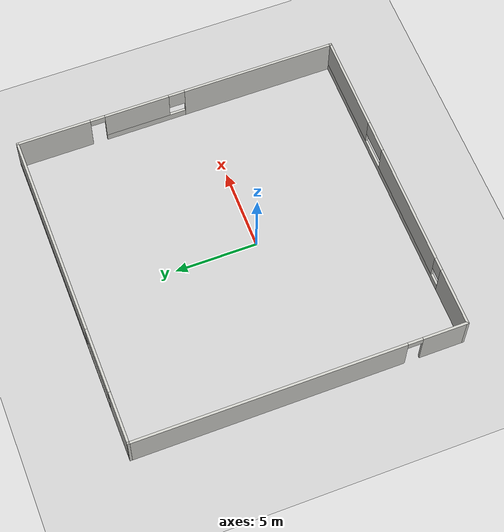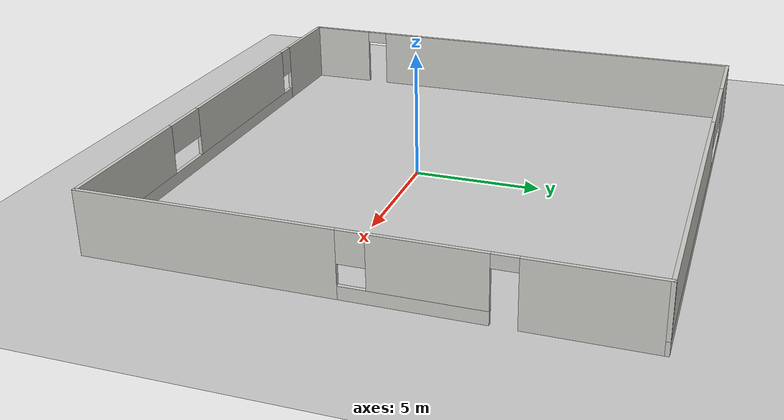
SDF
<sdf version="1.4">
 <world name="default">
  <include><uri>model://ground_plane</uri></include>
  <include><uri>model://sun</uri></include>
  <include><uri>model://simplerooml</uri><name>simplerooml</name></include>
 </world>
</sdf>

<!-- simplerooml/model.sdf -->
<sdf version='1.6'>
  <model name='simplerooml'>
    <pose frame=''>0.015 1.27 0 0 -0 0</pose>
    <link name='Wall_10'>
      <pose frame=''>9.948 0 0 0 -0 1.5708</pose>
      <visual name='Wall_10_Visual_0'>
        <pose frame=''>-5.23827 0 1.25 0 -0 0</pose>
        <geometry>
          <box>
            <size>9.52346 0.15 2.5</size>
          </box>
        </geometry>
        <material>
          <script>
            <uri>file://media/materials/scripts/gazebo.material</uri>
            <name>Gazebo/CeilingTiled</name>
          </script>
          <ambient>0.921569 0.807843 0.615686 1</ambient>
        </material>
        <meta>
          <layer>0</layer>
        </meta>
      </visual>
      <collision name='Wall_10_Collision_0'>
        <geometry>
          <box>
            <size>9.52346 0.15 2.5</size>
          </box>
        </geometry>
        <pose frame=''>-5.23827 0 1.25 0 -0 0</pose>
      </collision>
      <visual name='Wall_10_Visual_1'>
        <pose frame=''>7.7205 0 1.25 0 -0 0</pose>
        <geometry>
          <box>
            <size>4.559 0.15 2.5</size>
          </box>
        </geometry>
        <material>
          <script>
            <uri>file://media/materials/scripts/gazebo.material</uri>
            <name>Gazebo/CeilingTiled</name>
          </script>
          <ambient>0.921569 0.807843 0.615686 1</ambient>
        </material>
        <meta>
          <layer>0</layer>
        </meta>
      </visual>
      <collision name='Wall_10_Collision_1'>
        <geometry>
          <box>
            <size>4.559 0.15 2.5</size>
          </box>
        </geometry>
        <pose frame=''>7.7205 0 1.25 0 -0 0</pose>
      </collision>
      <visual name='Wall_10_Visual_2'>
        <pose frame=''>2.03223 0 0.25 0 -0 0</pose>
        <geometry>
          <box>
            <size>5.01754 0.15 0.5</size>
          </box>
        </geometry>
        <material>
          <script>
            <uri>file://media/materials/scripts/gazebo.material</uri>
            <name>Gazebo/CeilingTiled</name>
          </script>
          <ambient>0.921569 0.807843 0.615686 1</ambient>
        </material>
        <meta>
          <layer>0</layer>
        </meta>
      </visual>
      <collision name='Wall_10_Collision_2'>
        <geometry>
          <box>
            <size>5.01754 0.15 0.5</size>
          </box>
        </geometry>
        <pose frame=''>2.03223 0 0.25 0 -0 0</pose>
      </collision>
      <visual name='Wall_10_Visual_3'>
        <pose frame=''>2.53223 0 1.5 0 -0 0</pose>
        <geometry>
          <box>
            <size>4.01754 0.15 2</size>
          </box>
        </geometry>
        <material>
          <script>
            <uri>file://media/materials/scripts/gazebo.material</uri>
            <name>Gazebo/CeilingTiled</name>
          </script>
          <ambient>0.921569 0.807843 0.615686 1</ambient>
        </material>
        <meta>
          <layer>0</layer>
        </meta>
      </visual>
      <collision name='Wall_10_Collision_3'>
        <geometry>
          <box>
            <size>4.01754 0.15 2</size>
          </box>
        </geometry>
        <pose frame=''>2.53223 0 1.5 0 -0 0</pose>
      </collision>
      <visual name='Wall_10_Visual_4'>
        <pose frame=''>0.023464 0 1.9 0 -0 0</pose>
        <geometry>
          <box>
            <size>1 0.15 1.2</size>
          </box>
        </geometry>
        <material>
          <script>
            <uri>file://media/materials/scripts/gazebo.material</uri>
            <name>Gazebo/CeilingTiled</name>
          </script>
          <ambient>0.921569 0.807843 0.615686 1</ambient>
        </material>
        <meta>
          <layer>0</layer>
        </meta>
      </visual>
      <collision name='Wall_10_Collision_4'>
        <geometry>
          <box>
            <size>1 0.15 1.2</size>
          </box>
        </geometry>
        <pose frame=''>0.023464 0 1.9 0 -0 0</pose>
      </collision>
      <visual name='Wall_10_Visual_5'>
        <pose frame=''>4.991 0 2.25 0 -0 0</pose>
        <geometry>
          <box>
            <size>0.9 0.15 0.5</size>
          </box>
        </geometry>
        <material>
          <script>
            <uri>file://media/materials/scripts/gazebo.material</uri>
            <name>Gazebo/CeilingTiled</name>
          </script>
          <ambient>0.921569 0.807843 0.615686 1</ambient>
        </material>
        <meta>
          <layer>0</layer>
        </meta>
      </visual>
      <collision name='Wall_10_Collision_5'>
        <geometry>
          <box>
            <size>0.9 0.15 0.5</size>
          </box>
        </geometry>
        <pose frame=''>4.991 0 2.25 0 -0 0</pose>
      </collision>
    </link>
    <link name='Wall_12'>
      <pose frame=''>-9.948 0 0 0 -0 1.5708</pose>
      <visual name='Wall_12_Visual_0'>
        <pose frame=''>-8.61363 0 1.25 0 -0 0</pose>
        <geometry>
          <box>
            <size>2.77274 0.15 2.5</size>
          </box>
        </geometry>
        <material>
          <script>
            <uri>file://media/materials/scripts/gazebo.material</uri>
            <name>Gazebo/CeilingTiled</name>
          </script>
          <ambient>0.921569 0.807843 0.615686 1</ambient>
        </material>
        <meta>
          <layer>0</layer>
        </meta>
      </visual>
      <collision name='Wall_12_Collision_0'>
        <geometry>
          <box>
            <size>2.77274 0.15 2.5</size>
          </box>
        </geometry>
        <pose frame=''>-8.61363 0 1.25 0 -0 0</pose>
      </collision>
      <visual name='Wall_12_Visual_1'>
        <pose frame=''>1.83637 0 1.25 0 -0 0</pose>
        <geometry>
          <box>
            <size>16.3273 0.15 2.5</size>
          </box>
        </geometry>
        <material>
          <script>
            <uri>file://media/materials/scripts/gazebo.material</uri>
            <name>Gazebo/CeilingTiled</name>
          </script>
          <ambient>0.921569 0.807843 0.615686 1</ambient>
        </material>
        <meta>
          <layer>0</layer>
        </meta>
      </visual>
      <collision name='Wall_12_Collision_1'>
        <geometry>
          <box>
            <size>16.3273 0.15 2.5</size>
          </box>
        </geometry>
        <pose frame=''>1.83637 0 1.25 0 -0 0</pose>
      </collision>
      <visual name='Wall_12_Visual_2'>
        <pose frame=''>-6.77726 0 2.25 0 -0 0</pose>
        <geometry>
          <box>
            <size>0.9 0.15 0.5</size>
          </box>
        </geometry>
        <material>
          <script>
            <uri>file://media/materials/scripts/gazebo.material</uri>
            <name>Gazebo/CeilingTiled</name>
          </script>
          <ambient>0.921569 0.807843 0.615686 1</ambient>
        </material>
        <meta>
          <layer>0</layer>
        </meta>
      </visual>
      <collision name='Wall_12_Collision_2'>
        <geometry>
          <box>
            <size>0.9 0.15 0.5</size>
          </box>
        </geometry>
        <pose frame=''>-6.77726 0 2.25 0 -0 0</pose>
      </collision>
    </link>
    <link name='Wall_14'>
      <pose frame=''>-0 9.925 0 0 -0 0</pose>
      <visual name='Wall_14_Visual_0'>
        <pose frame=''>-8.41988 0 1.25 0 -0 0</pose>
        <geometry>
          <box>
            <size>3.20651 0.15 2.5</size>
          </box>
        </geometry>
        <material>
          <script>
            <uri>file://media/materials/scripts/gazebo.material</uri>
            <name>Gazebo/CeilingTiled</name>
          </script>
          <ambient>0.921569 0.807843 0.615686 1</ambient>
        </material>
        <meta>
          <layer>0</layer>
        </meta>
      </visual>
      <collision name='Wall_14_Collision_0'>
        <geometry>
          <box>
            <size>3.20651 0.15 2.5</size>
          </box>
        </geometry>
        <pose frame=''>-8.41988 0 1.25 0 -0 0</pose>
      </collision>
      <visual name='Wall_14_Visual_1'>
        <pose frame=''>1.60325 0 0.25 0 -0 0</pose>
        <geometry>
          <box>
            <size>16.8398 0.15 0.5</size>
          </box>
        </geometry>
        <material>
          <script>
            <uri>file://media/materials/scripts/gazebo.material</uri>
            <name>Gazebo/CeilingTiled</name>
          </script>
          <ambient>0.921569 0.807843 0.615686 1</ambient>
        </material>
        <meta>
          <layer>0</layer>
        </meta>
      </visual>
      <collision name='Wall_14_Collision_1'>
        <geometry>
          <box>
            <size>16.8398 0.15 0.5</size>
          </box>
        </geometry>
        <pose frame=''>1.60325 0 0.25 0 -0 0</pose>
      </collision>
      <visual name='Wall_14_Visual_2'>
        <pose frame=''>3.60325 0 1.5 0 -0 0</pose>
        <geometry>
          <box>
            <size>12.8398 0.15 2</size>
          </box>
        </geometry>
        <material>
          <script>
            <uri>file://media/materials/scripts/gazebo.material</uri>
            <name>Gazebo/CeilingTiled</name>
          </script>
          <ambient>0.921569 0.807843 0.615686 1</ambient>
        </material>
        <meta>
          <layer>0</layer>
        </meta>
      </visual>
      <collision name='Wall_14_Collision_2'>
        <geometry>
          <box>
            <size>12.8398 0.15 2</size>
          </box>
        </geometry>
        <pose frame=''>3.60325 0 1.5 0 -0 0</pose>
      </collision>
      <visual name='Wall_14_Visual_3'>
        <pose frame=''>-4.81662 0 1.9 0 -0 0</pose>
        <geometry>
          <box>
            <size>4 0.15 1.2</size>
          </box>
        </geometry>
        <material>
          <script>
            <uri>file://media/materials/scripts/gazebo.material</uri>
            <name>Gazebo/CeilingTiled</name>
          </script>
          <ambient>0.921569 0.807843 0.615686 1</ambient>
        </material>
        <meta>
          <layer>0</layer>
        </meta>
      </visual>
      <collision name='Wall_14_Collision_3'>
        <geometry>
          <box>
            <size>4 0.15 1.2</size>
          </box>
        </geometry>
        <pose frame=''>-4.81662 0 1.9 0 -0 0</pose>
      </collision>
    </link>
    <link name='Wall_8'>
      <pose frame=''>-0 -9.925 0 0 -0 0</pose>
      <visual name='Wall_8_Visual_0'>
        <pose frame=''>-8.23621 0 1.25 0 -0 0</pose>
        <geometry>
          <box>
            <size>3.57359 0.15 2.5</size>
          </box>
        </geometry>
        <material>
          <script>
            <uri>file://media/materials/scripts/gazebo.material</uri>
            <name>Gazebo/CeilingTiled</name>
          </script>
          <ambient>0.921569 0.807843 0.615686 1</ambient>
        </material>
        <meta>
          <layer>0</layer>
        </meta>
      </visual>
      <collision name='Wall_8_Collision_0'>
        <geometry>
          <box>
            <size>3.57359 0.15 2.5</size>
          </box>
        </geometry>
        <pose frame=''>-8.23621 0 1.25 0 -0 0</pose>
      </collision>
      <visual name='Wall_8_Visual_1'>
        <pose frame=''>1.78679 0 0.25 0 -0 0</pose>
        <geometry>
          <box>
            <size>16.4724 0.15 0.5</size>
          </box>
        </geometry>
        <material>
          <script>
            <uri>file://media/materials/scripts/gazebo.material</uri>
            <name>Gazebo/CeilingTiled</name>
          </script>
          <ambient>0.921569 0.807843 0.615686 1</ambient>
        </material>
        <meta>
          <layer>0</layer>
        </meta>
      </visual>
      <collision name='Wall_8_Collision_1'>
        <geometry>
          <box>
            <size>16.4724 0.15 0.5</size>
          </box>
        </geometry>
        <pose frame=''>1.78679 0 0.25 0 -0 0</pose>
      </collision>
      <visual name='Wall_8_Visual_2'>
        <pose frame=''>-1.84461 0 1.5 0 -0 0</pose>
        <geometry>
          <box>
            <size>7.60962 0.15 2</size>
          </box>
        </geometry>
        <material>
          <script>
            <uri>file://media/materials/scripts/gazebo.material</uri>
            <name>Gazebo/CeilingTiled</name>
          </script>
          <ambient>0.921569 0.807843 0.615686 1</ambient>
        </material>
        <meta>
          <layer>0</layer>
        </meta>
      </visual>
      <collision name='Wall_8_Collision_2'>
        <geometry>
          <box>
            <size>7.60962 0.15 2</size>
          </box>
        </geometry>
        <pose frame=''>-1.84461 0 1.5 0 -0 0</pose>
      </collision>
      <visual name='Wall_8_Visual_3'>
        <pose frame=''>6.9916 0 1.5 0 -0 0</pose>
        <geometry>
          <box>
            <size>6.0628 0.15 2</size>
          </box>
        </geometry>
        <material>
          <script>
            <uri>file://media/materials/scripts/gazebo.material</uri>
            <name>Gazebo/CeilingTiled</name>
          </script>
          <ambient>0.921569 0.807843 0.615686 1</ambient>
        </material>
        <meta>
          <layer>0</layer>
        </meta>
      </visual>
      <collision name='Wall_8_Collision_3'>
        <geometry>
          <box>
            <size>6.0628 0.15 2</size>
          </box>
        </geometry>
        <pose frame=''>6.9916 0 1.5 0 -0 0</pose>
      </collision>
      <visual name='Wall_8_Visual_4'>
        <pose frame=''>-6.04941 0 1.9 0 -0 0</pose>
        <geometry>
          <box>
            <size>0.8 0.15 1.2</size>
          </box>
        </geometry>
        <material>
          <script>
            <uri>file://media/materials/scripts/gazebo.material</uri>
            <name>Gazebo/CeilingTiled</name>
          </script>
          <ambient>0.921569 0.807843 0.615686 1</ambient>
        </material>
        <meta>
          <layer>0</layer>
        </meta>
      </visual>
      <collision name='Wall_8_Collision_4'>
        <geometry>
          <box>
            <size>0.8 0.15 1.2</size>
          </box>
        </geometry>
        <pose frame=''>-6.04941 0 1.9 0 -0 0</pose>
      </collision>
      <visual name='Wall_8_Visual_5'>
        <pose frame=''>2.9602 0 1.9 0 -0 0</pose>
        <geometry>
          <box>
            <size>2 0.15 1.2</size>
          </box>
        </geometry>
        <material>
          <script>
            <uri>file://media/materials/scripts/gazebo.material</uri>
            <name>Gazebo/CeilingTiled</name>
          </script>
          <ambient>0.921569 0.807843 0.615686 1</ambient>
        </material>
        <meta>
          <layer>0</layer>
        </meta>
      </visual>
      <collision name='Wall_8_Collision_5'>
        <geometry>
          <box>
            <size>2 0.15 1.2</size>
          </box>
        </geometry>
        <pose frame=''>2.9602 0 1.9 0 -0 0</pose>
      </collision>
    </link>
    <static>1</static>
  </model>
</sdf>
